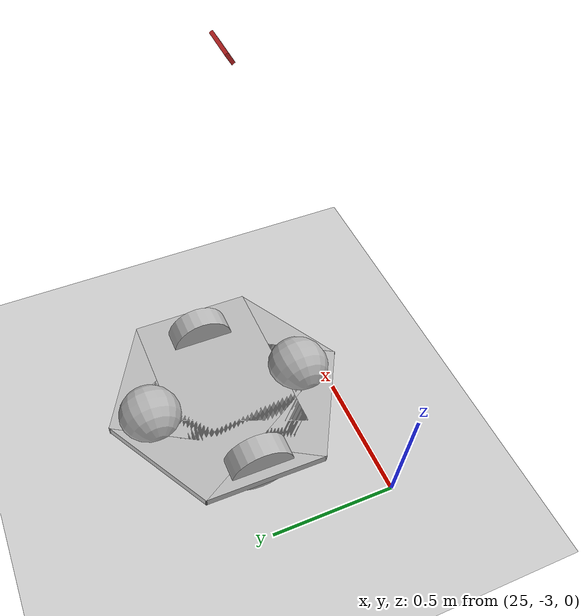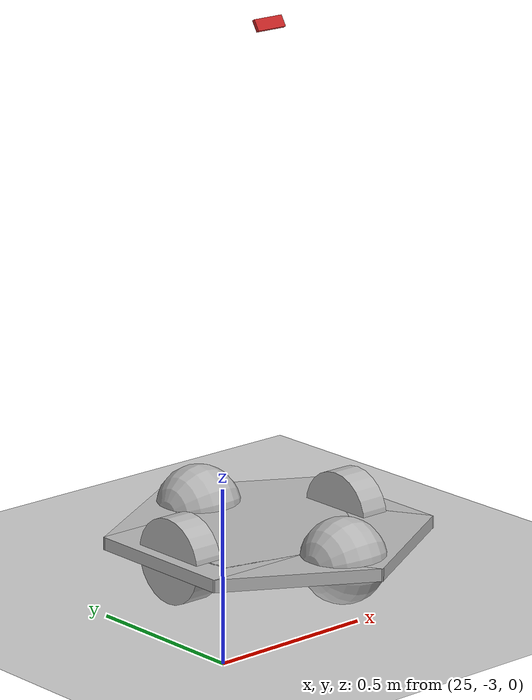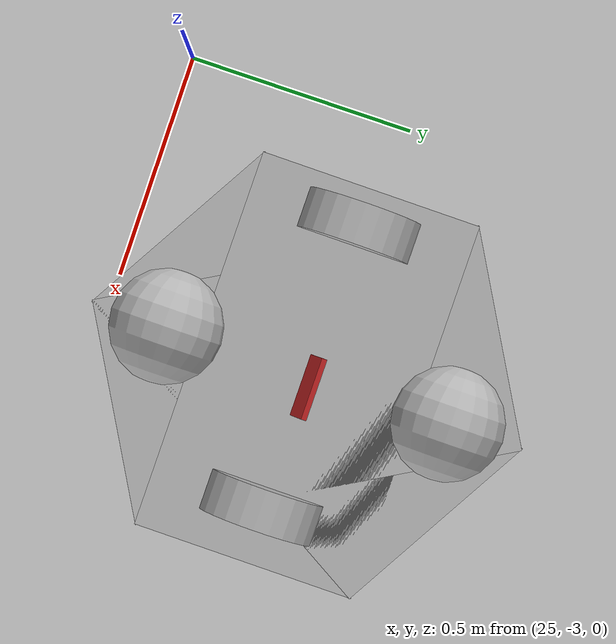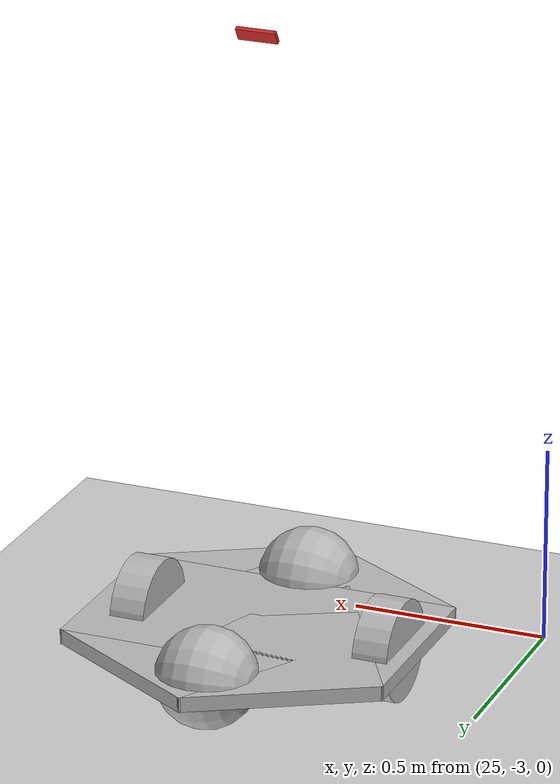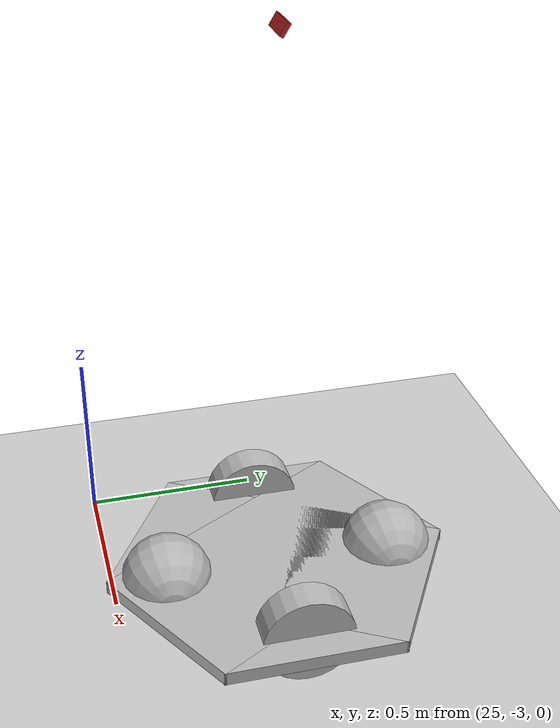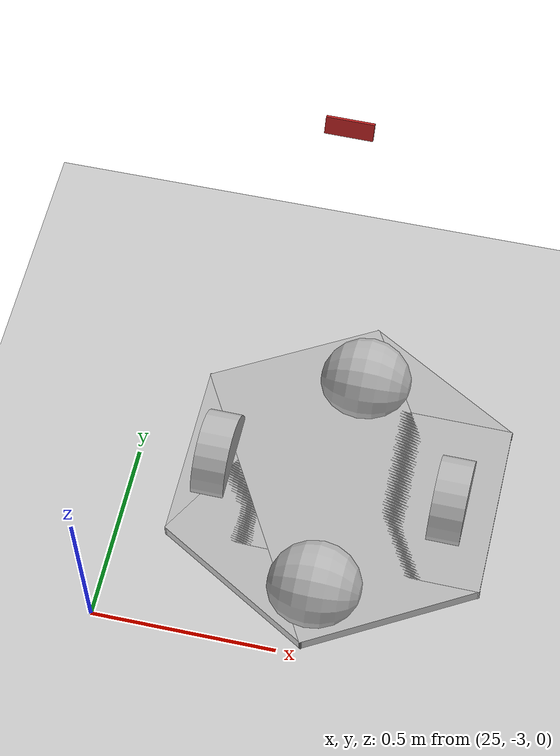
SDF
<sdf version="1.7">
 <world name="default">
  <light name="sun" type="directional">
   <pose>0 0 10 0 -0 0</pose>
   <diffuse>0.8 0.8 0.8 1</diffuse>
   <specular>0.2 0.2 0.2 1</specular>
   <attenuation>
    <range>1000</range>
    <constant>0.9</constant>
    <linear>0.01</linear>
    <quadratic>0.001</quadratic>
   </attenuation>
   <direction>-0.5 0.1 -0.9</direction>
   <spot><inner_angle>0</inner_angle><outer_angle>0</outer_angle><falloff>0</falloff></spot>
  </light>
  <gravity>0 0 -9.8</gravity>
  <magnetic_field>6e-06 2.3e-05 -4.2e-05</magnetic_field>
  <atmosphere type="adiabatic"/>
  <physics type="ode">
   <max_step_size>0.001</max_step_size>
   <real_time_factor>1</real_time_factor>
   <real_time_update_rate>1000</real_time_update_rate>
  </physics>
  <scene><ambient>0.4 0.4 0.4 1</ambient><background>0.7 0.7 0.7 1</background><shadows>1</shadows></scene>
  <spherical_coordinates>
   <surface_model>EARTH_WGS84</surface_model>
   <latitude_deg>0</latitude_deg>
   <longitude_deg>0</longitude_deg>
   <elevation>0</elevation>
   <heading_deg>0</heading_deg>
  </spherical_coordinates>
  <model name="robot">
   <link name="base_link">
    <inertial>
     <pose>0 0 0.071429 0 -0 0</pose>
     <mass>7</mass>
     <inertia><ixx>2.05383</ixx><ixy>0</ixy><ixz>0</ixz><iyy>2.32211</iyy><iyz>0</iyz><izz>2.30782</izz></inertia>
    </inertial>
    <collision name="base_link_fixed_joint_lump__collision_chassis_collision">
     <geometry><box><size>0.4878 0.8382 0.0381</size></box></geometry>
    </collision>
    <collision name="base_link_fixed_joint_lump__link_rotate1_collision_1">
     <geometry><box><size>0.4878 0.8382 0.0381</size></box></geometry>
    </collision>
    <collision name="base_link_fixed_joint_lump__link_rotate2_collision_2">
     <geometry><box><size>0.4878 0.8382 0.0381</size></box></geometry>
    </collision>
    <collision name="base_link_fixed_joint_lump__c_back_collision_3">
     <pose>-0.3175 0 0 1.5708 -0 0</pose>
     <geometry><sphere><radius>0.1263</radius></sphere></geometry>
    </collision>
    <collision name="base_link_fixed_joint_lump__c_front_collision_4">
     <pose>0.3175 0 0 1.5708 -0 0</pose>
     <geometry><sphere><radius>0.1263</radius></sphere></geometry>
    </collision>
    <visual name="base_link_visual"><geometry><box><size>0.4878 0.8382 0.0381</size></box></geometry></visual>
    <visual name="base_link_fixed_joint_lump__link_rotate1_visual_1">
     <pose>0 0 0 0 -0 2.094</pose>
     <geometry><box><size>0.4878 0.8382 0.0381</size></box></geometry>
    </visual>
    <visual name="base_link_fixed_joint_lump__link_rotate2_visual_2">
     <pose>0 0 0 0 0 -2.094</pose>
     <geometry><box><size>0.4878 0.8382 0.0381</size></box></geometry>
    </visual>
    <visual name="base_link_fixed_joint_lump__camera_link_visual_3">
     <pose>0 0 1.5 0 0.55 0</pose>
     <geometry><box><size>0.01 0.1 0.035</size></box></geometry>
     <material>
      <script><name>Gazebo/Red</name><uri>file://media/materials/scripts/gazebo.material</uri></script>
     </material>
    </visual>
    <visual name="base_link_fixed_joint_lump__c_back_visual_4">
     <pose>-0.3175 0 0 1.5708 -0 0</pose>
     <geometry><sphere><radius>0.1263</radius></sphere></geometry>
    </visual>
    <visual name="base_link_fixed_joint_lump__c_front_visual_5">
     <pose>0.3175 0 0 1.5708 -0 0</pose>
     <geometry><sphere><radius>0.1263</radius></sphere></geometry>
    </visual>
    <sensor name="camera" type="depth">
     <visualize>1</visualize>
     <update_rate>10</update_rate>
     <camera>
      <horizontal_fov>2</horizontal_fov>
      <image><format>A8R8G8B8</format><width>1920</width><height>1080</height></image>
      <clip><near>0.05</near><far>8</far></clip>
     </camera>
     <plugin name="camera_controller" filename="libgazebo_ros_camera.so">
      <frame_name>camera_link_optical</frame_name>
      <robotNamespace>/</robotNamespace>
     </plugin>
     <pose>0 0 1.5 0 0.55 0</pose>
    </sensor>
   </link>
   <joint name="joint_left_wheel" type="revolute">
    <pose relative_to="base_link">0 -0.3175 0 0 -0 0</pose>
    <parent>base_link</parent>
    <child>link_left_wheel</child>
    <axis>
     <xyz>0 1 0</xyz>
     <limit><effort>10000</effort><velocity>1000</velocity><lower>-1e+16</lower><upper>1e+16</upper></limit>
     <dynamics><spring_reference>0</spring_reference><spring_stiffness>0</spring_stiffness></dynamics>
    </axis>
   </joint>
   <link name="link_left_wheel">
    <pose relative_to="joint_left_wheel">0 0 0 0 -0 0</pose>
    <inertial>
     <pose>0 0 0 -0 1.5707 1.5707</pose>
     <mass>0.2</mass>
     <inertia>
      <ixx>0.000526667</ixx>
      <ixy>0</ixy>
      <ixz>0</ixz>
      <iyy>0.000526667</iyy>
      <iyz>0</iyz>
      <izz>0.001</izz>
     </inertia>
    </inertial>
    <collision name="link_left_wheel_collision_collision">
     <pose>0 0 0 1.57089 1.57079 -3.14159</pose>
     <geometry><cylinder><length>0.0889</length><radius>0.127</radius></cylinder></geometry>
    </collision>
    <visual name="link_left_wheel_visual_visual">
     <pose>0 0.02 0 1.57089 1.57079 -3.14159</pose>
     <geometry><cylinder><length>0.0889</length><radius>0.127</radius></cylinder></geometry>
    </visual>
   </link>
   <joint name="joint_right_wheel" type="revolute">
    <pose relative_to="base_link">0 0.3175 0 0 -0 0</pose>
    <parent>base_link</parent>
    <child>link_right_wheel</child>
    <axis>
     <xyz>0 1 0</xyz>
     <limit><effort>10000</effort><velocity>1000</velocity><lower>-1e+16</lower><upper>1e+16</upper></limit>
     <dynamics><spring_reference>0</spring_reference><spring_stiffness>0</spring_stiffness></dynamics>
    </axis>
   </joint>
   <link name="link_right_wheel">
    <pose relative_to="joint_right_wheel">0 0 0 0 -0 0</pose>
    <inertial>
     <pose>0 0 0 -0 1.5707 1.5707</pose>
     <mass>0.2</mass>
     <inertia>
      <ixx>0.000526667</ixx>
      <ixy>0</ixy>
      <ixz>0</ixz>
      <iyy>0.000526667</iyy>
      <iyz>0</iyz>
      <izz>0.001</izz>
     </inertia>
    </inertial>
    <collision name="link_right_wheel_collision_collision">
     <pose>0 0 0 1.57089 1.57079 -3.14159</pose>
     <geometry><cylinder><length>0.0889</length><radius>0.127</radius></cylinder></geometry>
    </collision>
    <visual name="link_right_wheel_visual_visual">
     <pose>0 0.02 0 1.57089 1.57079 -3.14159</pose>
     <geometry><cylinder><length>0.0889</length><radius>0.127</radius></cylinder></geometry>
    </visual>
   </link>
   <static>0</static>
   <plugin name="gazebo_ros_control" filename="libgazebo_ros_control.so">
    <robotNamespace>/</robotNamespace>
   </plugin>
   <pose>25.5758 -2.54361 0.126998 1e-06 0.001595 1.56211</pose>
  </model>
  <model name="my_ground_plane">
   <static>1</static>
   <link name="link">
    <collision name="collision">
     <geometry><plane><normal>0 0 1</normal><size>79 57</size></plane></geometry>
     <surface><friction><ode><mu>100</mu><mu2>50</mu2></ode></friction></surface>
    </collision>
    <visual name="visual">
     <cast_shadows>0</cast_shadows>
     <geometry><plane><normal>0 0 1</normal><size>79 57</size></plane></geometry>
     <material>
      <script>
       <uri>model://my_ground_plane/materials/scripts</uri>
       <uri>model://my_ground_plane/materials/textures/</uri>
       <name>MyGroundPlane/Image</name>
      </script>
     </material>
    </visual>
   </link>
   <pose>-0.166074 0.494407 0 0 -0 0</pose>
  </model>
 </world>
</sdf>
